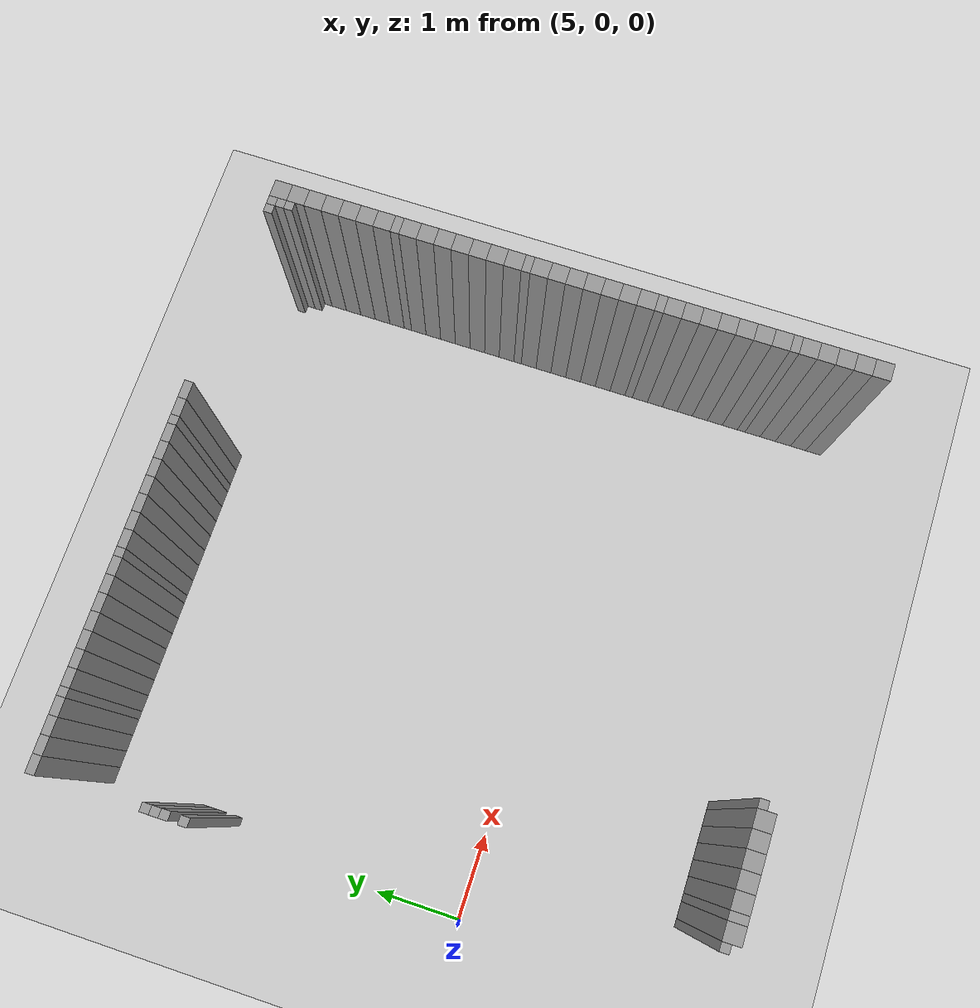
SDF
<sdf version="1.6">
 <world name="default">
  <include><uri>model://sun</uri></include>
  <include><uri>model://ground_plane</uri></include>
  <model name="stage_test">
   <static>1</static>
   <pose>-12 -12 0 0 0 0</pose>
   <link name="Wall_647">
    <pose>17.3 16.450000000000003 0 0 0 0</pose>
    <collision name="Wall_647_collision">
     <pose>0 0 1.25 0 0 0</pose>
     <geometry><box><size>0.20000000000000284 0.09999999999999787 2.5</size></box></geometry>
    </collision>
    <visual name="Wall_647_visual">
     <pose>0 0 1.25 0 0 0</pose>
     <geometry><box><size>0.20000000000000284 0.09999999999999787 2.5</size></box></geometry>
     <material>
      <script><uri>file://media/materials/scripts/gazebo.material</uri><name>Gazebo/Grey</name></script>
      <ambient>1 1 1 1</ambient>
     </material>
    </visual>
   </link>
   <link name="Wall_650">
    <pose>17.5 16.450000000000003 0 0 0 0</pose>
    <collision name="Wall_650_collision">
     <pose>0 0 1.25 0 0 0</pose>
     <geometry><box><size>0.1999999999999993 0.09999999999999787 2.5</size></box></geometry>
    </collision>
    <visual name="Wall_650_visual">
     <pose>0 0 1.25 0 0 0</pose>
     <geometry><box><size>0.1999999999999993 0.09999999999999787 2.5</size></box></geometry>
     <material>
      <script><uri>file://media/materials/scripts/gazebo.material</uri><name>Gazebo/Grey</name></script>
      <ambient>1 1 1 1</ambient>
     </material>
    </visual>
   </link>
   <link name="Wall_655">
    <pose>17.700000000000003 16.450000000000003 0 0 0 0</pose>
    <collision name="Wall_655_collision">
     <pose>0 0 1.25 0 0 0</pose>
     <geometry><box><size>0.1999999999999993 0.09999999999999787 2.5</size></box></geometry>
    </collision>
    <visual name="Wall_655_visual">
     <pose>0 0 1.25 0 0 0</pose>
     <geometry><box><size>0.1999999999999993 0.09999999999999787 2.5</size></box></geometry>
     <material>
      <script><uri>file://media/materials/scripts/gazebo.material</uri><name>Gazebo/Grey</name></script>
      <ambient>1 1 1 1</ambient>
     </material>
    </visual>
   </link>
   <link name="Wall_656">
    <pose>17.9 16.450000000000003 0 0 0 0</pose>
    <collision name="Wall_656_collision">
     <pose>0 0 1.25 0 0 0</pose>
     <geometry><box><size>0.1999999999999993 0.09999999999999787 2.5</size></box></geometry>
    </collision>
    <visual name="Wall_656_visual">
     <pose>0 0 1.25 0 0 0</pose>
     <geometry><box><size>0.1999999999999993 0.09999999999999787 2.5</size></box></geometry>
     <material>
      <script><uri>file://media/materials/scripts/gazebo.material</uri><name>Gazebo/Grey</name></script>
      <ambient>1 1 1 1</ambient>
     </material>
    </visual>
   </link>
   <link name="Wall_662">
    <pose>17.25 15.25 0 0 0 0</pose>
    <collision name="Wall_662_collision">
     <pose>0 0 1.25 0 0 0</pose>
     <geometry><box><size>0.10000000000000142 0.09999999999999964 2.5</size></box></geometry>
    </collision>
    <visual name="Wall_662_visual">
     <pose>0 0 1.25 0 0 0</pose>
     <geometry><box><size>0.10000000000000142 0.09999999999999964 2.5</size></box></geometry>
     <material>
      <script><uri>file://media/materials/scripts/gazebo.material</uri><name>Gazebo/Grey</name></script>
      <ambient>1 1 1 1</ambient>
     </material>
    </visual>
   </link>
   <link name="Wall_663">
    <pose>17.25 15.150000000000002 0 0 0 0</pose>
    <collision name="Wall_663_collision">
     <pose>0 0 1.25 0 0 0</pose>
     <geometry><box><size>0.10000000000000142 0.09999999999999964 2.5</size></box></geometry>
    </collision>
    <visual name="Wall_663_visual">
     <pose>0 0 1.25 0 0 0</pose>
     <geometry><box><size>0.10000000000000142 0.09999999999999964 2.5</size></box></geometry>
     <material>
      <script><uri>file://media/materials/scripts/gazebo.material</uri><name>Gazebo/Grey</name></script>
      <ambient>1 1 1 1</ambient>
     </material>
    </visual>
   </link>
   <link name="Wall_664">
    <pose>17.25 15.05 0 0 0 0</pose>
    <collision name="Wall_664_collision">
     <pose>0 0 1.25 0 0 0</pose>
     <geometry><box><size>0.10000000000000142 0.10000000000000142 2.5</size></box></geometry>
    </collision>
    <visual name="Wall_664_visual">
     <pose>0 0 1.25 0 0 0</pose>
     <geometry><box><size>0.10000000000000142 0.10000000000000142 2.5</size></box></geometry>
     <material>
      <script><uri>file://media/materials/scripts/gazebo.material</uri><name>Gazebo/Grey</name></script>
      <ambient>1 1 1 1</ambient>
     </material>
    </visual>
   </link>
   <link name="Wall_694">
    <pose>17.25 14.85 0 0 0 0</pose>
    <collision name="Wall_694_collision">
     <pose>0 0 1.25 0 0 0</pose>
     <geometry><box><size>0.10000000000000142 0.09999999999999964 2.5</size></box></geometry>
    </collision>
    <visual name="Wall_694_visual">
     <pose>0 0 1.25 0 0 0</pose>
     <geometry><box><size>0.10000000000000142 0.09999999999999964 2.5</size></box></geometry>
     <material>
      <script><uri>file://media/materials/scripts/gazebo.material</uri><name>Gazebo/Grey</name></script>
      <ambient>1 1 1 1</ambient>
     </material>
    </visual>
   </link>
   <link name="Wall_709">
    <pose>18.05 16.450000000000003 0 0 0 0</pose>
    <collision name="Wall_709_collision">
     <pose>0 0 1.25 0 0 0</pose>
     <geometry><box><size>0.10000000000000142 0.09999999999999787 2.5</size></box></geometry>
    </collision>
    <visual name="Wall_709_visual">
     <pose>0 0 1.25 0 0 0</pose>
     <geometry><box><size>0.10000000000000142 0.09999999999999787 2.5</size></box></geometry>
     <material>
      <script><uri>file://media/materials/scripts/gazebo.material</uri><name>Gazebo/Grey</name></script>
      <ambient>1 1 1 1</ambient>
     </material>
    </visual>
   </link>
   <link name="Wall_710">
    <pose>18.200000000000003 16.450000000000003 0 0 0 0</pose>
    <collision name="Wall_710_collision">
     <pose>0 0 1.25 0 0 0</pose>
     <geometry><box><size>0.1999999999999993 0.09999999999999787 2.5</size></box></geometry>
    </collision>
    <visual name="Wall_710_visual">
     <pose>0 0 1.25 0 0 0</pose>
     <geometry><box><size>0.1999999999999993 0.09999999999999787 2.5</size></box></geometry>
     <material>
      <script><uri>file://media/materials/scripts/gazebo.material</uri><name>Gazebo/Grey</name></script>
      <ambient>1 1 1 1</ambient>
     </material>
    </visual>
   </link>
   <link name="Wall_711">
    <pose>18.4 16.450000000000003 0 0 0 0</pose>
    <collision name="Wall_711_collision">
     <pose>0 0 1.25 0 0 0</pose>
     <geometry><box><size>0.1999999999999993 0.09999999999999787 2.5</size></box></geometry>
    </collision>
    <visual name="Wall_711_visual">
     <pose>0 0 1.25 0 0 0</pose>
     <geometry><box><size>0.1999999999999993 0.09999999999999787 2.5</size></box></geometry>
     <material>
      <script><uri>file://media/materials/scripts/gazebo.material</uri><name>Gazebo/Grey</name></script>
      <ambient>1 1 1 1</ambient>
     </material>
    </visual>
   </link>
   <link name="Wall_712">
    <pose>18.6 16.450000000000003 0 0 0 0</pose>
    <collision name="Wall_712_collision">
     <pose>0 0 1.25 0 0 0</pose>
     <geometry><box><size>0.1999999999999993 0.09999999999999787 2.5</size></box></geometry>
    </collision>
    <visual name="Wall_712_visual">
     <pose>0 0 1.25 0 0 0</pose>
     <geometry><box><size>0.1999999999999993 0.09999999999999787 2.5</size></box></geometry>
     <material>
      <script><uri>file://media/materials/scripts/gazebo.material</uri><name>Gazebo/Grey</name></script>
      <ambient>1 1 1 1</ambient>
     </material>
    </visual>
   </link>
   <link name="Wall_713">
    <pose>18.8 16.450000000000003 0 0 0 0</pose>
    <collision name="Wall_713_collision">
     <pose>0 0 1.25 0 0 0</pose>
     <geometry><box><size>0.20000000000000284 0.09999999999999787 2.5</size></box></geometry>
    </collision>
    <visual name="Wall_713_visual">
     <pose>0 0 1.25 0 0 0</pose>
     <geometry><box><size>0.20000000000000284 0.09999999999999787 2.5</size></box></geometry>
     <material>
      <script><uri>file://media/materials/scripts/gazebo.material</uri><name>Gazebo/Grey</name></script>
      <ambient>1 1 1 1</ambient>
     </material>
    </visual>
   </link>
   <link name="Wall_714">
    <pose>19.0 16.450000000000003 0 0 0 0</pose>
    <collision name="Wall_714_collision">
     <pose>0 0 1.25 0 0 0</pose>
     <geometry><box><size>0.1999999999999993 0.09999999999999787 2.5</size></box></geometry>
    </collision>
    <visual name="Wall_714_visual">
     <pose>0 0 1.25 0 0 0</pose>
     <geometry><box><size>0.1999999999999993 0.09999999999999787 2.5</size></box></geometry>
     <material>
      <script><uri>file://media/materials/scripts/gazebo.material</uri><name>Gazebo/Grey</name></script>
      <ambient>1 1 1 1</ambient>
     </material>
    </visual>
   </link>
   <link name="Wall_715">
    <pose>19.200000000000003 16.450000000000003 0 0 0 0</pose>
    <collision name="Wall_715_collision">
     <pose>0 0 1.25 0 0 0</pose>
     <geometry><box><size>0.1999999999999993 0.09999999999999787 2.5</size></box></geometry>
    </collision>
    <visual name="Wall_715_visual">
     <pose>0 0 1.25 0 0 0</pose>
     <geometry><box><size>0.1999999999999993 0.09999999999999787 2.5</size></box></geometry>
     <material>
      <script><uri>file://media/materials/scripts/gazebo.material</uri><name>Gazebo/Grey</name></script>
      <ambient>1 1 1 1</ambient>
     </material>
    </visual>
   </link>
   <link name="Wall_716">
    <pose>19.4 16.450000000000003 0 0 0 0</pose>
    <collision name="Wall_716_collision">
     <pose>0 0 1.25 0 0 0</pose>
     <geometry><box><size>0.1999999999999993 0.09999999999999787 2.5</size></box></geometry>
    </collision>
    <visual name="Wall_716_visual">
     <pose>0 0 1.25 0 0 0</pose>
     <geometry><box><size>0.1999999999999993 0.09999999999999787 2.5</size></box></geometry>
     <material>
      <script><uri>file://media/materials/scripts/gazebo.material</uri><name>Gazebo/Grey</name></script>
      <ambient>1 1 1 1</ambient>
     </material>
    </visual>
   </link>
   <link name="Wall_731">
    <pose>19.55 16.450000000000003 0 0 0 0</pose>
    <collision name="Wall_731_collision">
     <pose>0 0 1.25 0 0 0</pose>
     <geometry><box><size>0.10000000000000142 0.09999999999999787 2.5</size></box></geometry>
    </collision>
    <visual name="Wall_731_visual">
     <pose>0 0 1.25 0 0 0</pose>
     <geometry><box><size>0.10000000000000142 0.09999999999999787 2.5</size></box></geometry>
     <material>
      <script><uri>file://media/materials/scripts/gazebo.material</uri><name>Gazebo/Grey</name></script>
      <ambient>1 1 1 1</ambient>
     </material>
    </visual>
   </link>
   <link name="Wall_732">
    <pose>19.700000000000003 16.450000000000003 0 0 0 0</pose>
    <collision name="Wall_732_collision">
     <pose>0 0 1.25 0 0 0</pose>
     <geometry><box><size>0.1999999999999993 0.09999999999999787 2.5</size></box></geometry>
    </collision>
    <visual name="Wall_732_visual">
     <pose>0 0 1.25 0 0 0</pose>
     <geometry><box><size>0.1999999999999993 0.09999999999999787 2.5</size></box></geometry>
     <material>
      <script><uri>file://media/materials/scripts/gazebo.material</uri><name>Gazebo/Grey</name></script>
      <ambient>1 1 1 1</ambient>
     </material>
    </visual>
   </link>
   <link name="Wall_733">
    <pose>19.9 16.450000000000003 0 0 0 0</pose>
    <collision name="Wall_733_collision">
     <pose>0 0 1.25 0 0 0</pose>
     <geometry><box><size>0.1999999999999993 0.09999999999999787 2.5</size></box></geometry>
    </collision>
    <visual name="Wall_733_visual">
     <pose>0 0 1.25 0 0 0</pose>
     <geometry><box><size>0.1999999999999993 0.09999999999999787 2.5</size></box></geometry>
     <material>
      <script><uri>file://media/materials/scripts/gazebo.material</uri><name>Gazebo/Grey</name></script>
      <ambient>1 1 1 1</ambient>
     </material>
    </visual>
   </link>
   <link name="Wall_734">
    <pose>20.1 16.450000000000003 0 0 0 0</pose>
    <collision name="Wall_734_collision">
     <pose>0 0 1.25 0 0 0</pose>
     <geometry><box><size>0.20000000000000284 0.09999999999999787 2.5</size></box></geometry>
    </collision>
    <visual name="Wall_734_visual">
     <pose>0 0 1.25 0 0 0</pose>
     <geometry><box><size>0.20000000000000284 0.09999999999999787 2.5</size></box></geometry>
     <material>
      <script><uri>file://media/materials/scripts/gazebo.material</uri><name>Gazebo/Grey</name></script>
      <ambient>1 1 1 1</ambient>
     </material>
    </visual>
   </link>
   <link name="Wall_735">
    <pose>20.300000000000004 16.450000000000003 0 0 0 0</pose>
    <collision name="Wall_735_collision">
     <pose>0 0 1.25 0 0 0</pose>
     <geometry><box><size>0.1999999999999993 0.09999999999999787 2.5</size></box></geometry>
    </collision>
    <visual name="Wall_735_visual">
     <pose>0 0 1.25 0 0 0</pose>
     <geometry><box><size>0.1999999999999993 0.09999999999999787 2.5</size></box></geometry>
     <material>
      <script><uri>file://media/materials/scripts/gazebo.material</uri><name>Gazebo/Grey</name></script>
      <ambient>1 1 1 1</ambient>
     </material>
    </visual>
   </link>
   <link name="Wall_736">
    <pose>20.5 16.450000000000003 0 0 0 0</pose>
    <collision name="Wall_736_collision">
     <pose>0 0 1.25 0 0 0</pose>
     <geometry><box><size>0.1999999999999993 0.09999999999999787 2.5</size></box></geometry>
    </collision>
    <visual name="Wall_736_visual">
     <pose>0 0 1.25 0 0 0</pose>
     <geometry><box><size>0.1999999999999993 0.09999999999999787 2.5</size></box></geometry>
     <material>
      <script><uri>file://media/materials/scripts/gazebo.material</uri><name>Gazebo/Grey</name></script>
      <ambient>1 1 1 1</ambient>
     </material>
    </visual>
   </link>
   <link name="Wall_737">
    <pose>20.700000000000003 16.450000000000003 0 0 0 0</pose>
    <collision name="Wall_737_collision">
     <pose>0 0 1.25 0 0 0</pose>
     <geometry><box><size>0.1999999999999993 0.09999999999999787 2.5</size></box></geometry>
    </collision>
    <visual name="Wall_737_visual">
     <pose>0 0 1.25 0 0 0</pose>
     <geometry><box><size>0.1999999999999993 0.09999999999999787 2.5</size></box></geometry>
     <material>
      <script><uri>file://media/materials/scripts/gazebo.material</uri><name>Gazebo/Grey</name></script>
      <ambient>1 1 1 1</ambient>
     </material>
    </visual>
   </link>
   <link name="Wall_738">
    <pose>20.9 16.450000000000003 0 0 0 0</pose>
    <collision name="Wall_738_collision">
     <pose>0 0 1.25 0 0 0</pose>
     <geometry><box><size>0.1999999999999993 0.09999999999999787 2.5</size></box></geometry>
    </collision>
    <visual name="Wall_738_visual">
     <pose>0 0 1.25 0 0 0</pose>
     <geometry><box><size>0.1999999999999993 0.09999999999999787 2.5</size></box></geometry>
     <material>
      <script><uri>file://media/materials/scripts/gazebo.material</uri><name>Gazebo/Grey</name></script>
      <ambient>1 1 1 1</ambient>
     </material>
    </visual>
   </link>
   <link name="Wall_753">
    <pose>21.05 16.450000000000003 0 0 0 0</pose>
    <collision name="Wall_753_collision">
     <pose>0 0 1.25 0 0 0</pose>
     <geometry><box><size>0.10000000000000142 0.09999999999999787 2.5</size></box></geometry>
    </collision>
    <visual name="Wall_753_visual">
     <pose>0 0 1.25 0 0 0</pose>
     <geometry><box><size>0.10000000000000142 0.09999999999999787 2.5</size></box></geometry>
     <material>
      <script><uri>file://media/materials/scripts/gazebo.material</uri><name>Gazebo/Grey</name></script>
      <ambient>1 1 1 1</ambient>
     </material>
    </visual>
   </link>
   <link name="Wall_754">
    <pose>21.200000000000003 16.450000000000003 0 0 0 0</pose>
    <collision name="Wall_754_collision">
     <pose>0 0 1.25 0 0 0</pose>
     <geometry><box><size>0.1999999999999993 0.09999999999999787 2.5</size></box></geometry>
    </collision>
    <visual name="Wall_754_visual">
     <pose>0 0 1.25 0 0 0</pose>
     <geometry><box><size>0.1999999999999993 0.09999999999999787 2.5</size></box></geometry>
     <material>
      <script><uri>file://media/materials/scripts/gazebo.material</uri><name>Gazebo/Grey</name></script>
      <ambient>1 1 1 1</ambient>
     </material>
    </visual>
   </link>
   <link name="Wall_755">
    <pose>21.4 16.450000000000003 0 0 0 0</pose>
    <collision name="Wall_755_collision">
     <pose>0 0 1.25 0 0 0</pose>
     <geometry><box><size>0.1999999999999993 0.09999999999999787 2.5</size></box></geometry>
    </collision>
    <visual name="Wall_755_visual">
     <pose>0 0 1.25 0 0 0</pose>
     <geometry><box><size>0.1999999999999993 0.09999999999999787 2.5</size></box></geometry>
     <material>
      <script><uri>file://media/materials/scripts/gazebo.material</uri><name>Gazebo/Grey</name></script>
      <ambient>1 1 1 1</ambient>
     </material>
    </visual>
   </link>
   <link name="Wall_782">
    <pose>23.65 16.35 0 0 0 0</pose>
    <collision name="Wall_782_collision">
     <pose>0 0 1.25 0 0 0</pose>
     <geometry><box><size>0.10000000000000142 0.10000000000000142 2.5</size></box></geometry>
    </collision>
    <visual name="Wall_782_visual">
     <pose>0 0 1.25 0 0 0</pose>
     <geometry><box><size>0.10000000000000142 0.10000000000000142 2.5</size></box></geometry>
     <material>
      <script><uri>file://media/materials/scripts/gazebo.material</uri><name>Gazebo/Grey</name></script>
      <ambient>1 1 1 1</ambient>
     </material>
    </visual>
   </link>
   <link name="Wall_783">
    <pose>23.75 16.35 0 0 0 0</pose>
    <collision name="Wall_783_collision">
     <pose>0 0 1.25 0 0 0</pose>
     <geometry><box><size>0.09999999999999787 0.10000000000000142 2.5</size></box></geometry>
    </collision>
    <visual name="Wall_783_visual">
     <pose>0 0 1.25 0 0 0</pose>
     <geometry><box><size>0.09999999999999787 0.10000000000000142 2.5</size></box></geometry>
     <material>
      <script><uri>file://media/materials/scripts/gazebo.material</uri><name>Gazebo/Grey</name></script>
      <ambient>1 1 1 1</ambient>
     </material>
    </visual>
   </link>
   <link name="Wall_784">
    <pose>23.75 16.25 0 0 0 0</pose>
    <collision name="Wall_784_collision">
     <pose>0 0 1.25 0 0 0</pose>
     <geometry><box><size>0.09999999999999787 0.10000000000000142 2.5</size></box></geometry>
    </collision>
    <visual name="Wall_784_visual">
     <pose>0 0 1.25 0 0 0</pose>
     <geometry><box><size>0.09999999999999787 0.10000000000000142 2.5</size></box></geometry>
     <material>
      <script><uri>file://media/materials/scripts/gazebo.material</uri><name>Gazebo/Grey</name></script>
      <ambient>1 1 1 1</ambient>
     </material>
    </visual>
   </link>
   <link name="Wall_786">
    <pose>23.9 16.3 0 0 0 0</pose>
    <collision name="Wall_786_collision">
     <pose>0 0 1.25 0 0 0</pose>
     <geometry><box><size>0.1999999999999993 0.20000000000000284 2.5</size></box></geometry>
    </collision>
    <visual name="Wall_786_visual">
     <pose>0 0 1.25 0 0 0</pose>
     <geometry><box><size>0.1999999999999993 0.20000000000000284 2.5</size></box></geometry>
     <material>
      <script><uri>file://media/materials/scripts/gazebo.material</uri><name>Gazebo/Grey</name></script>
      <ambient>1 1 1 1</ambient>
     </material>
    </visual>
   </link>
   <link name="Wall_787">
    <pose>23.75 16.150000000000002 0 0 0 0</pose>
    <collision name="Wall_787_collision">
     <pose>0 0 1.25 0 0 0</pose>
     <geometry><box><size>0.09999999999999787 0.09999999999999787 2.5</size></box></geometry>
    </collision>
    <visual name="Wall_787_visual">
     <pose>0 0 1.25 0 0 0</pose>
     <geometry><box><size>0.09999999999999787 0.09999999999999787 2.5</size></box></geometry>
     <material>
      <script><uri>file://media/materials/scripts/gazebo.material</uri><name>Gazebo/Grey</name></script>
      <ambient>1 1 1 1</ambient>
     </material>
    </visual>
   </link>
   <link name="Wall_788">
    <pose>23.9 16.1 0 0 0 0</pose>
    <collision name="Wall_788_collision">
     <pose>0 0 1.25 0 0 0</pose>
     <geometry><box><size>0.1999999999999993 0.1999999999999993 2.5</size></box></geometry>
    </collision>
    <visual name="Wall_788_visual">
     <pose>0 0 1.25 0 0 0</pose>
     <geometry><box><size>0.1999999999999993 0.1999999999999993 2.5</size></box></geometry>
     <material>
      <script><uri>file://media/materials/scripts/gazebo.material</uri><name>Gazebo/Grey</name></script>
      <ambient>1 1 1 1</ambient>
     </material>
    </visual>
   </link>
   <link name="Wall_789">
    <pose>23.9 15.9 0 0 0 0</pose>
    <collision name="Wall_789_collision">
     <pose>0 0 1.25 0 0 0</pose>
     <geometry><box><size>0.1999999999999993 0.1999999999999993 2.5</size></box></geometry>
    </collision>
    <visual name="Wall_789_visual">
     <pose>0 0 1.25 0 0 0</pose>
     <geometry><box><size>0.1999999999999993 0.1999999999999993 2.5</size></box></geometry>
     <material>
      <script><uri>file://media/materials/scripts/gazebo.material</uri><name>Gazebo/Grey</name></script>
      <ambient>1 1 1 1</ambient>
     </material>
    </visual>
   </link>
   <link name="Wall_790">
    <pose>23.9 15.7 0 0 0 0</pose>
    <collision name="Wall_790_collision">
     <pose>0 0 1.25 0 0 0</pose>
     <geometry><box><size>0.1999999999999993 0.1999999999999993 2.5</size></box></geometry>
    </collision>
    <visual name="Wall_790_visual">
     <pose>0 0 1.25 0 0 0</pose>
     <geometry><box><size>0.1999999999999993 0.1999999999999993 2.5</size></box></geometry>
     <material>
      <script><uri>file://media/materials/scripts/gazebo.material</uri><name>Gazebo/Grey</name></script>
      <ambient>1 1 1 1</ambient>
     </material>
    </visual>
   </link>
   <link name="Wall_791">
    <pose>23.9 15.500000000000002 0 0 0 0</pose>
    <collision name="Wall_791_collision">
     <pose>0 0 1.25 0 0 0</pose>
     <geometry><box><size>0.1999999999999993 0.20000000000000107 2.5</size></box></geometry>
    </collision>
    <visual name="Wall_791_visual">
     <pose>0 0 1.25 0 0 0</pose>
     <geometry><box><size>0.1999999999999993 0.20000000000000107 2.5</size></box></geometry>
     <material>
      <script><uri>file://media/materials/scripts/gazebo.material</uri><name>Gazebo/Grey</name></script>
      <ambient>1 1 1 1</ambient>
     </material>
    </visual>
   </link>
   <link name="Wall_792">
    <pose>23.9 15.3 0 0 0 0</pose>
    <collision name="Wall_792_collision">
     <pose>0 0 1.25 0 0 0</pose>
     <geometry><box><size>0.1999999999999993 0.1999999999999993 2.5</size></box></geometry>
    </collision>
    <visual name="Wall_792_visual">
     <pose>0 0 1.25 0 0 0</pose>
     <geometry><box><size>0.1999999999999993 0.1999999999999993 2.5</size></box></geometry>
     <material>
      <script><uri>file://media/materials/scripts/gazebo.material</uri><name>Gazebo/Grey</name></script>
      <ambient>1 1 1 1</ambient>
     </material>
    </visual>
   </link>
   <link name="Wall_793">
    <pose>23.9 15.100000000000001 0 0 0 0</pose>
    <collision name="Wall_793_collision">
     <pose>0 0 1.25 0 0 0</pose>
     <geometry><box><size>0.1999999999999993 0.20000000000000107 2.5</size></box></geometry>
    </collision>
    <visual name="Wall_793_visual">
     <pose>0 0 1.25 0 0 0</pose>
     <geometry><box><size>0.1999999999999993 0.20000000000000107 2.5</size></box></geometry>
     <material>
      <script><uri>file://media/materials/scripts/gazebo.material</uri><name>Gazebo/Grey</name></script>
      <ambient>1 1 1 1</ambient>
     </material>
    </visual>
   </link>
   <link name="Wall_794">
    <pose>23.9 14.95 0 0 0 0</pose>
    <collision name="Wall_794_collision">
     <pose>0 0 1.25 0 0 0</pose>
     <geometry><box><size>0.1999999999999993 0.09999999999999964 2.5</size></box></geometry>
    </collision>
    <visual name="Wall_794_visual">
     <pose>0 0 1.25 0 0 0</pose>
     <geometry><box><size>0.1999999999999993 0.09999999999999964 2.5</size></box></geometry>
     <material>
      <script><uri>file://media/materials/scripts/gazebo.material</uri><name>Gazebo/Grey</name></script>
      <ambient>1 1 1 1</ambient>
     </material>
    </visual>
   </link>
   <link name="Wall_795">
    <pose>23.9 14.8 0 0 0 0</pose>
    <collision name="Wall_795_collision">
     <pose>0 0 1.25 0 0 0</pose>
     <geometry><box><size>0.1999999999999993 0.1999999999999993 2.5</size></box></geometry>
    </collision>
    <visual name="Wall_795_visual">
     <pose>0 0 1.25 0 0 0</pose>
     <geometry><box><size>0.1999999999999993 0.1999999999999993 2.5</size></box></geometry>
     <material>
      <script><uri>file://media/materials/scripts/gazebo.material</uri><name>Gazebo/Grey</name></script>
      <ambient>1 1 1 1</ambient>
     </material>
    </visual>
   </link>
   <link name="Wall_796">
    <pose>23.9 14.600000000000001 0 0 0 0</pose>
    <collision name="Wall_796_collision">
     <pose>0 0 1.25 0 0 0</pose>
     <geometry><box><size>0.1999999999999993 0.20000000000000107 2.5</size></box></geometry>
    </collision>
    <visual name="Wall_796_visual">
     <pose>0 0 1.25 0 0 0</pose>
     <geometry><box><size>0.1999999999999993 0.20000000000000107 2.5</size></box></geometry>
     <material>
      <script><uri>file://media/materials/scripts/gazebo.material</uri><name>Gazebo/Grey</name></script>
      <ambient>1 1 1 1</ambient>
     </material>
    </visual>
   </link>
   <link name="Wall_797">
    <pose>23.9 14.4 0 0 0 0</pose>
    <collision name="Wall_797_collision">
     <pose>0 0 1.25 0 0 0</pose>
     <geometry><box><size>0.1999999999999993 0.1999999999999993 2.5</size></box></geometry>
    </collision>
    <visual name="Wall_797_visual">
     <pose>0 0 1.25 0 0 0</pose>
     <geometry><box><size>0.1999999999999993 0.1999999999999993 2.5</size></box></geometry>
     <material>
      <script><uri>file://media/materials/scripts/gazebo.material</uri><name>Gazebo/Grey</name></script>
      <ambient>1 1 1 1</ambient>
     </material>
    </visual>
   </link>
   <link name="Wall_798">
    <pose>23.9 14.2 0 0 0 0</pose>
    <collision name="Wall_798_collision">
     <pose>0 0 1.25 0 0 0</pose>
     <geometry><box><size>0.1999999999999993 0.1999999999999993 2.5</size></box></geometry>
    </collision>
    <visual name="Wall_798_visual">
     <pose>0 0 1.25 0 0 0</pose>
     <geometry><box><size>0.1999999999999993 0.1999999999999993 2.5</size></box></geometry>
     <material>
      <script><uri>file://media/materials/scripts/gazebo.material</uri><name>Gazebo/Grey</name></script>
      <ambient>1 1 1 1</ambient>
     </material>
    </visual>
   </link>
   <link name="Wall_799">
    <pose>23.9 14.000000000000002 0 0 0 0</pose>
    <collision name="Wall_799_collision">
     <pose>0 0 1.25 0 0 0</pose>
     <geometry><box><size>0.1999999999999993 0.20000000000000107 2.5</size></box></geometry>
    </collision>
    <visual name="Wall_799_visual">
     <pose>0 0 1.25 0 0 0</pose>
     <geometry><box><size>0.1999999999999993 0.20000000000000107 2.5</size></box></geometry>
     <material>
      <script><uri>file://media/materials/scripts/gazebo.material</uri><name>Gazebo/Grey</name></script>
      <ambient>1 1 1 1</ambient>
     </material>
    </visual>
   </link>
   <link name="Wall_800">
    <pose>23.9 13.8 0 0 0 0</pose>
    <collision name="Wall_800_collision">
     <pose>0 0 1.25 0 0 0</pose>
     <geometry><box><size>0.1999999999999993 0.1999999999999993 2.5</size></box></geometry>
    </collision>
    <visual name="Wall_800_visual">
     <pose>0 0 1.25 0 0 0</pose>
     <geometry><box><size>0.1999999999999993 0.1999999999999993 2.5</size></box></geometry>
     <material>
      <script><uri>file://media/materials/scripts/gazebo.material</uri><name>Gazebo/Grey</name></script>
      <ambient>1 1 1 1</ambient>
     </material>
    </visual>
   </link>
   <link name="Wall_801">
    <pose>23.9 13.600000000000001 0 0 0 0</pose>
    <collision name="Wall_801_collision">
     <pose>0 0 1.25 0 0 0</pose>
     <geometry><box><size>0.1999999999999993 0.20000000000000107 2.5</size></box></geometry>
    </collision>
    <visual name="Wall_801_visual">
     <pose>0 0 1.25 0 0 0</pose>
     <geometry><box><size>0.1999999999999993 0.20000000000000107 2.5</size></box></geometry>
     <material>
      <script><uri>file://media/materials/scripts/gazebo.material</uri><name>Gazebo/Grey</name></script>
      <ambient>1 1 1 1</ambient>
     </material>
    </visual>
   </link>
   <link name="Wall_802">
    <pose>23.9 13.45 0 0 0 0</pose>
    <collision name="Wall_802_collision">
     <pose>0 0 1.25 0 0 0</pose>
     <geometry><box><size>0.1999999999999993 0.09999999999999964 2.5</size></box></geometry>
    </collision>
    <visual name="Wall_802_visual">
     <pose>0 0 1.25 0 0 0</pose>
     <geometry><box><size>0.1999999999999993 0.09999999999999964 2.5</size></box></geometry>
     <material>
      <script><uri>file://media/materials/scripts/gazebo.material</uri><name>Gazebo/Grey</name></script>
      <ambient>1 1 1 1</ambient>
     </material>
    </visual>
   </link>
   <link name="Wall_803">
    <pose>23.9 13.3 0 0 0 0</pose>
    <collision name="Wall_803_collision">
     <pose>0 0 1.25 0 0 0</pose>
     <geometry><box><size>0.1999999999999993 0.1999999999999993 2.5</size></box></geometry>
    </collision>
    <visual name="Wall_803_visual">
     <pose>0 0 1.25 0 0 0</pose>
     <geometry><box><size>0.1999999999999993 0.1999999999999993 2.5</size></box></geometry>
     <material>
      <script><uri>file://media/materials/scripts/gazebo.material</uri><name>Gazebo/Grey</name></script>
      <ambient>1 1 1 1</ambient>
     </material>
    </visual>
   </link>
   <link name="Wall_804">
    <pose>23.9 13.100000000000001 0 0 0 0</pose>
    <collision name="Wall_804_collision">
     <pose>0 0 1.25 0 0 0</pose>
     <geometry><box><size>0.1999999999999993 0.20000000000000107 2.5</size></box></geometry>
    </collision>
    <visual name="Wall_804_visual">
     <pose>0 0 1.25 0 0 0</pose>
     <geometry><box><size>0.1999999999999993 0.20000000000000107 2.5</size></box></geometry>
     <material>
      <script><uri>file://media/materials/scripts/gazebo.material</uri><name>Gazebo/Grey</name></script>
      <ambient>1 1 1 1</ambient>
     </material>
    </visual>
   </link>
   <link name="Wall_805">
    <pose>23.9 12.9 0 0 0 0</pose>
    <collision name="Wall_805_collision">
     <pose>0 0 1.25 0 0 0</pose>
     <geometry><box><size>0.1999999999999993 0.1999999999999993 2.5</size></box></geometry>
    </collision>
    <visual name="Wall_805_visual">
     <pose>0 0 1.25 0 0 0</pose>
     <geometry><box><size>0.1999999999999993 0.1999999999999993 2.5</size></box></geometry>
     <material>
      <script><uri>file://media/materials/scripts/gazebo.material</uri><name>Gazebo/Grey</name></script>
      <ambient>1 1 1 1</ambient>
     </material>
    </visual>
   </link>
   <link name="Wall_806">
    <pose>23.9 12.7 0 0 0 0</pose>
    <collision name="Wall_806_collision">
     <pose>0 0 1.25 0 0 0</pose>
     <geometry><box><size>0.1999999999999993 0.1999999999999993 2.5</size></box></geometry>
    </collision>
    <visual name="Wall_806_visual">
     <pose>0 0 1.25 0 0 0</pose>
     <geometry><box><size>0.1999999999999993 0.1999999999999993 2.5</size></box></geometry>
     <material>
      <script><uri>file://media/materials/scripts/gazebo.material</uri><name>Gazebo/Grey</name></script>
      <ambient>1 1 1 1</ambient>
     </material>
    </visual>
   </link>
   <link name="Wall_807">
    <pose>23.9 12.500000000000002 0 0 0 0</pose>
    <collision name="Wall_807_collision">
     <pose>0 0 1.25 0 0 0</pose>
     <geometry><box><size>0.1999999999999993 0.20000000000000107 2.5</size></box></geometry>
    </collision>
    <visual name="Wall_807_visual">
     <pose>0 0 1.25 0 0 0</pose>
     <geometry><box><size>0.1999999999999993 0.20000000000000107 2.5</size></box></geometry>
     <material>
      <script><uri>file://media/materials/scripts/gazebo.material</uri><name>Gazebo/Grey</name></script>
      <ambient>1 1 1 1</ambient>
     </material>
    </visual>
   </link>
   <link name="Wall_808">
    <pose>23.9 12.3 0 0 0 0</pose>
    <collision name="Wall_808_collision">
     <pose>0 0 1.25 0 0 0</pose>
     <geometry><box><size>0.1999999999999993 0.1999999999999993 2.5</size></box></geometry>
    </collision>
    <visual name="Wall_808_visual">
     <pose>0 0 1.25 0 0 0</pose>
     <geometry><box><size>0.1999999999999993 0.1999999999999993 2.5</size></box></geometry>
     <material>
      <script><uri>file://media/materials/scripts/gazebo.material</uri><name>Gazebo/Grey</name></script>
      <ambient>1 1 1 1</ambient>
     </material>
    </visual>
   </link>
   <link name="Wall_809">
    <pose>23.9 12.100000000000001 0 0 0 0</pose>
    <collision name="Wall_809_collision">
     <pose>0 0 1.25 0 0 0</pose>
     <geometry><box><size>0.1999999999999993 0.20000000000000107 2.5</size></box></geometry>
    </collision>
    <visual name="Wall_809_visual">
     <pose>0 0 1.25 0 0 0</pose>
     <geometry><box><size>0.1999999999999993 0.20000000000000107 2.5</size></box></geometry>
     <material>
      <script><uri>file://media/materials/scripts/gazebo.material</uri><name>Gazebo/Grey</name></script>
      <ambient>1 1 1 1</ambient>
     </material>
    </visual>
   </link>
   <link name="Wall_869">
    <pose>17.75 9.55 0 0 0 0</pose>
    <collision name="Wall_869_collision">
     <pose>0 0 1.25 0 0 0</pose>
     <geometry><box><size>0.10000000000000142 0.10000000000000142 2.5</size></box></geometry>
    </collision>
    <visual name="Wall_869_visual">
     <pose>0 0 1.25 0 0 0</pose>
     <geometry><box><size>0.10000000000000142 0.10000000000000142 2.5</size></box></geometry>
     <material>
      <script><uri>file://media/materials/scripts/gazebo.material</uri><name>Gazebo/Grey</name></script>
      <ambient>1 1 1 1</ambient>
     </material>
    </visual>
   </link>
   <link name="Wall_871">
    <pose>17.9 9.5 0 0 0 0</pose>
    <collision name="Wall_871_collision">
     <pose>0 0 1.25 0 0 0</pose>
     <geometry><box><size>0.1999999999999993 0.20000000000000107 2.5</size></box></geometry>
    </collision>
    <visual name="Wall_871_visual">
     <pose>0 0 1.25 0 0 0</pose>
     <geometry><box><size>0.1999999999999993 0.20000000000000107 2.5</size></box></geometry>
     <material>
      <script><uri>file://media/materials/scripts/gazebo.material</uri><name>Gazebo/Grey</name></script>
      <ambient>1 1 1 1</ambient>
     </material>
    </visual>
   </link>
   <link name="Wall_941">
    <pose>18.05 9.5 0 0 0 0</pose>
    <collision name="Wall_941_collision">
     <pose>0 0 1.25 0 0 0</pose>
     <geometry><box><size>0.10000000000000142 0.20000000000000107 2.5</size></box></geometry>
    </collision>
    <visual name="Wall_941_visual">
     <pose>0 0 1.25 0 0 0</pose>
     <geometry><box><size>0.10000000000000142 0.20000000000000107 2.5</size></box></geometry>
     <material>
      <script><uri>file://media/materials/scripts/gazebo.material</uri><name>Gazebo/Grey</name></script>
      <ambient>1 1 1 1</ambient>
     </material>
    </visual>
   </link>
   <link name="Wall_942">
    <pose>18.200000000000003 9.5 0 0 0 0</pose>
    <collision name="Wall_942_collision">
     <pose>0 0 1.25 0 0 0</pose>
     <geometry><box><size>0.1999999999999993 0.20000000000000107 2.5</size></box></geometry>
    </collision>
    <visual name="Wall_942_visual">
     <pose>0 0 1.25 0 0 0</pose>
     <geometry><box><size>0.1999999999999993 0.20000000000000107 2.5</size></box></geometry>
     <material>
      <script><uri>file://media/materials/scripts/gazebo.material</uri><name>Gazebo/Grey</name></script>
      <ambient>1 1 1 1</ambient>
     </material>
    </visual>
   </link>
   <link name="Wall_944">
    <pose>18.4 9.5 0 0 0 0</pose>
    <collision name="Wall_944_collision">
     <pose>0 0 1.25 0 0 0</pose>
     <geometry><box><size>0.1999999999999993 0.20000000000000107 2.5</size></box></geometry>
    </collision>
    <visual name="Wall_944_visual">
     <pose>0 0 1.25 0 0 0</pose>
     <geometry><box><size>0.1999999999999993 0.20000000000000107 2.5</size></box></geometry>
     <material>
      <script><uri>file://media/materials/scripts/gazebo.material</uri><name>Gazebo/Grey</name></script>
      <ambient>1 1 1 1</ambient>
     </material>
    </visual>
   </link>
   <link name="Wall_945">
    <pose>18.6 9.5 0 0 0 0</pose>
    <collision name="Wall_945_collision">
     <pose>0 0 1.25 0 0 0</pose>
     <geometry><box><size>0.1999999999999993 0.20000000000000107 2.5</size></box></geometry>
    </collision>
    <visual name="Wall_945_visual">
     <pose>0 0 1.25 0 0 0</pose>
     <geometry><box><size>0.1999999999999993 0.20000000000000107 2.5</size></box></geometry>
     <material>
      <script><uri>file://media/materials/scripts/gazebo.material</uri><name>Gazebo/Grey</name></script>
      <ambient>1 1 1 1</ambient>
     </material>
    </visual>
   </link>
   <link name="Wall_947">
    <pose>18.8 9.5 0 0 0 0</pose>
    <collision name="Wall_947_collision">
     <pose>0 0 1.25 0 0 0</pose>
     <geometry><box><size>0.20000000000000284 0.20000000000000107 2.5</size></box></geometry>
    </collision>
    <visual name="Wall_947_visual">
     <pose>0 0 1.25 0 0 0</pose>
     <geometry><box><size>0.20000000000000284 0.20000000000000107 2.5</size></box></geometry>
     <material>
      <script><uri>file://media/materials/scripts/gazebo.material</uri><name>Gazebo/Grey</name></script>
      <ambient>1 1 1 1</ambient>
     </material>
    </visual>
   </link>
   <link name="Wall_948">
    <pose>19.0 9.5 0 0 0 0</pose>
    <collision name="Wall_948_collision">
     <pose>0 0 1.25 0 0 0</pose>
     <geometry><box><size>0.1999999999999993 0.20000000000000107 2.5</size></box></geometry>
    </collision>
    <visual name="Wall_948_visual">
     <pose>0 0 1.25 0 0 0</pose>
     <geometry><box><size>0.1999999999999993 0.20000000000000107 2.5</size></box></geometry>
     <material>
      <script><uri>file://media/materials/scripts/gazebo.material</uri><name>Gazebo/Grey</name></script>
      <ambient>1 1 1 1</ambient>
     </material>
    </visual>
   </link>
   <link name="Wall_950">
    <pose>19.150000000000002 9.55 0 0 0 0</pose>
    <collision name="Wall_950_collision">
     <pose>0 0 1.25 0 0 0</pose>
     <geometry><box><size>0.10000000000000142 0.10000000000000142 2.5</size></box></geometry>
    </collision>
    <visual name="Wall_950_visual">
     <pose>0 0 1.25 0 0 0</pose>
     <geometry><box><size>0.10000000000000142 0.10000000000000142 2.5</size></box></geometry>
     <material>
      <script><uri>file://media/materials/scripts/gazebo.material</uri><name>Gazebo/Grey</name></script>
      <ambient>1 1 1 1</ambient>
     </material>
    </visual>
   </link>
   <link name="Wall_1009">
    <pose>23.9 11.95 0 0 0 0</pose>
    <collision name="Wall_1009_collision">
     <pose>0 0 1.25 0 0 0</pose>
     <geometry><box><size>0.1999999999999993 0.09999999999999964 2.5</size></box></geometry>
    </collision>
    <visual name="Wall_1009_visual">
     <pose>0 0 1.25 0 0 0</pose>
     <geometry><box><size>0.1999999999999993 0.09999999999999964 2.5</size></box></geometry>
     <material>
      <script><uri>file://media/materials/scripts/gazebo.material</uri><name>Gazebo/Grey</name></script>
      <ambient>1 1 1 1</ambient>
     </material>
    </visual>
   </link>
   <link name="Wall_1010">
    <pose>23.9 11.8 0 0 0 0</pose>
    <collision name="Wall_1010_collision">
     <pose>0 0 1.25 0 0 0</pose>
     <geometry><box><size>0.1999999999999993 0.1999999999999993 2.5</size></box></geometry>
    </collision>
    <visual name="Wall_1010_visual">
     <pose>0 0 1.25 0 0 0</pose>
     <geometry><box><size>0.1999999999999993 0.1999999999999993 2.5</size></box></geometry>
     <material>
      <script><uri>file://media/materials/scripts/gazebo.material</uri><name>Gazebo/Grey</name></script>
      <ambient>1 1 1 1</ambient>
     </material>
    </visual>
   </link>
   <link name="Wall_1011">
    <pose>23.9 11.600000000000001 0 0 0 0</pose>
    <collision name="Wall_1011_collision">
     <pose>0 0 1.25 0 0 0</pose>
     <geometry><box><size>0.1999999999999993 0.20000000000000107 2.5</size></box></geometry>
    </collision>
    <visual name="Wall_1011_visual">
     <pose>0 0 1.25 0 0 0</pose>
     <geometry><box><size>0.1999999999999993 0.20000000000000107 2.5</size></box></geometry>
     <material>
      <script><uri>file://media/materials/scripts/gazebo.material</uri><name>Gazebo/Grey</name></script>
      <ambient>1 1 1 1</ambient>
     </material>
    </visual>
   </link>
   <link name="Wall_1012">
    <pose>23.9 11.4 0 0 0 0</pose>
    <collision name="Wall_1012_collision">
     <pose>0 0 1.25 0 0 0</pose>
     <geometry><box><size>0.1999999999999993 0.1999999999999993 2.5</size></box></geometry>
    </collision>
    <visual name="Wall_1012_visual">
     <pose>0 0 1.25 0 0 0</pose>
     <geometry><box><size>0.1999999999999993 0.1999999999999993 2.5</size></box></geometry>
     <material>
      <script><uri>file://media/materials/scripts/gazebo.material</uri><name>Gazebo/Grey</name></script>
      <ambient>1 1 1 1</ambient>
     </material>
    </visual>
   </link>
   <link name="Wall_1013">
    <pose>23.9 11.2 0 0 0 0</pose>
    <collision name="Wall_1013_collision">
     <pose>0 0 1.25 0 0 0</pose>
     <geometry><box><size>0.1999999999999993 0.1999999999999993 2.5</size></box></geometry>
    </collision>
    <visual name="Wall_1013_visual">
     <pose>0 0 1.25 0 0 0</pose>
     <geometry><box><size>0.1999999999999993 0.1999999999999993 2.5</size></box></geometry>
     <material>
      <script><uri>file://media/materials/scripts/gazebo.material</uri><name>Gazebo/Grey</name></script>
      <ambient>1 1 1 1</ambient>
     </material>
    </visual>
   </link>
   <link name="Wall_1014">
    <pose>23.9 11.000000000000002 0 0 0 0</pose>
    <collision name="Wall_1014_collision">
     <pose>0 0 1.25 0 0 0</pose>
     <geometry><box><size>0.1999999999999993 0.20000000000000107 2.5</size></box></geometry>
    </collision>
    <visual name="Wall_1014_visual">
     <pose>0 0 1.25 0 0 0</pose>
     <geometry><box><size>0.1999999999999993 0.20000000000000107 2.5</size></box></geometry>
     <material>
      <script><uri>file://media/materials/scripts/gazebo.material</uri><name>Gazebo/Grey</name></script>
      <ambient>1 1 1 1</ambient>
     </material>
    </visual>
   </link>
   <link name="Wall_1015">
    <pose>23.9 10.8 0 0 0 0</pose>
    <collision name="Wall_1015_collision">
     <pose>0 0 1.25 0 0 0</pose>
     <geometry><box><size>0.1999999999999993 0.1999999999999993 2.5</size></box></geometry>
    </collision>
    <visual name="Wall_1015_visual">
     <pose>0 0 1.25 0 0 0</pose>
     <geometry><box><size>0.1999999999999993 0.1999999999999993 2.5</size></box></geometry>
     <material>
      <script><uri>file://media/materials/scripts/gazebo.material</uri><name>Gazebo/Grey</name></script>
      <ambient>1 1 1 1</ambient>
     </material>
    </visual>
   </link>
   <link name="Wall_1016">
    <pose>23.9 10.600000000000001 0 0 0 0</pose>
    <collision name="Wall_1016_collision">
     <pose>0 0 1.25 0 0 0</pose>
     <geometry><box><size>0.1999999999999993 0.20000000000000107 2.5</size></box></geometry>
    </collision>
    <visual name="Wall_1016_visual">
     <pose>0 0 1.25 0 0 0</pose>
     <geometry><box><size>0.1999999999999993 0.20000000000000107 2.5</size></box></geometry>
     <material>
      <script><uri>file://media/materials/scripts/gazebo.material</uri><name>Gazebo/Grey</name></script>
      <ambient>1 1 1 1</ambient>
     </material>
    </visual>
   </link>
   <link name="Wall_1017">
    <pose>23.9 10.45 0 0 0 0</pose>
    <collision name="Wall_1017_collision">
     <pose>0 0 1.25 0 0 0</pose>
     <geometry><box><size>0.1999999999999993 0.09999999999999964 2.5</size></box></geometry>
    </collision>
    <visual name="Wall_1017_visual">
     <pose>0 0 1.25 0 0 0</pose>
     <geometry><box><size>0.1999999999999993 0.09999999999999964 2.5</size></box></geometry>
     <material>
      <script><uri>file://media/materials/scripts/gazebo.material</uri><name>Gazebo/Grey</name></script>
      <ambient>1 1 1 1</ambient>
     </material>
    </visual>
   </link>
   <link name="Wall_1018">
    <pose>23.9 10.3 0 0 0 0</pose>
    <collision name="Wall_1018_collision">
     <pose>0 0 1.25 0 0 0</pose>
     <geometry><box><size>0.1999999999999993 0.1999999999999993 2.5</size></box></geometry>
    </collision>
    <visual name="Wall_1018_visual">
     <pose>0 0 1.25 0 0 0</pose>
     <geometry><box><size>0.1999999999999993 0.1999999999999993 2.5</size></box></geometry>
     <material>
      <script><uri>file://media/materials/scripts/gazebo.material</uri><name>Gazebo/Grey</name></script>
      <ambient>1 1 1 1</ambient>
     </material>
    </visual>
   </link>
   <link name="Wall_1019">
    <pose>23.9 10.100000000000001 0 0 0 0</pose>
    <collision name="Wall_1019_collision">
     <pose>0 0 1.25 0 0 0</pose>
     <geometry><box><size>0.1999999999999993 0.20000000000000107 2.5</size></box></geometry>
    </collision>
    <visual name="Wall_1019_visual">
     <pose>0 0 1.25 0 0 0</pose>
     <geometry><box><size>0.1999999999999993 0.20000000000000107 2.5</size></box></geometry>
     <material>
      <script><uri>file://media/materials/scripts/gazebo.material</uri><name>Gazebo/Grey</name></script>
      <ambient>1 1 1 1</ambient>
     </material>
    </visual>
   </link>
   <link name="Wall_1020">
    <pose>23.9 9.9 0 0 0 0</pose>
    <collision name="Wall_1020_collision">
     <pose>0 0 1.25 0 0 0</pose>
     <geometry><box><size>0.1999999999999993 0.1999999999999993 2.5</size></box></geometry>
    </collision>
    <visual name="Wall_1020_visual">
     <pose>0 0 1.25 0 0 0</pose>
     <geometry><box><size>0.1999999999999993 0.1999999999999993 2.5</size></box></geometry>
     <material>
      <script><uri>file://media/materials/scripts/gazebo.material</uri><name>Gazebo/Grey</name></script>
      <ambient>1 1 1 1</ambient>
     </material>
    </visual>
   </link>
   <link name="Wall_1021">
    <pose>23.9 9.700000000000001 0 0 0 0</pose>
    <collision name="Wall_1021_collision">
     <pose>0 0 1.25 0 0 0</pose>
     <geometry><box><size>0.1999999999999993 0.1999999999999993 2.5</size></box></geometry>
    </collision>
    <visual name="Wall_1021_visual">
     <pose>0 0 1.25 0 0 0</pose>
     <geometry><box><size>0.1999999999999993 0.1999999999999993 2.5</size></box></geometry>
     <material>
      <script><uri>file://media/materials/scripts/gazebo.material</uri><name>Gazebo/Grey</name></script>
      <ambient>1 1 1 1</ambient>
     </material>
    </visual>
   </link>
   <link name="Wall_1022">
    <pose>23.9 9.5 0 0 0 0</pose>
    <collision name="Wall_1022_collision">
     <pose>0 0 1.25 0 0 0</pose>
     <geometry><box><size>0.1999999999999993 0.20000000000000107 2.5</size></box></geometry>
    </collision>
    <visual name="Wall_1022_visual">
     <pose>0 0 1.25 0 0 0</pose>
     <geometry><box><size>0.1999999999999993 0.20000000000000107 2.5</size></box></geometry>
     <material>
      <script><uri>file://media/materials/scripts/gazebo.material</uri><name>Gazebo/Grey</name></script>
      <ambient>1 1 1 1</ambient>
     </material>
    </visual>
   </link>
  </model>
 </world>
</sdf>
